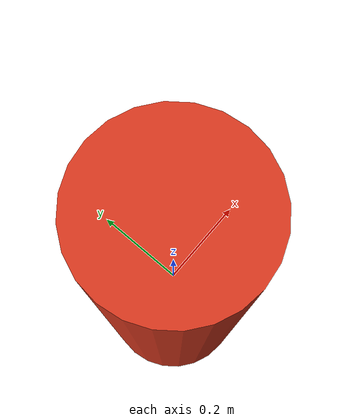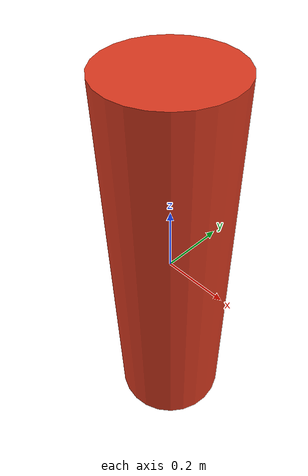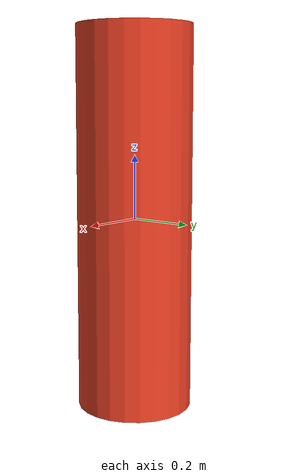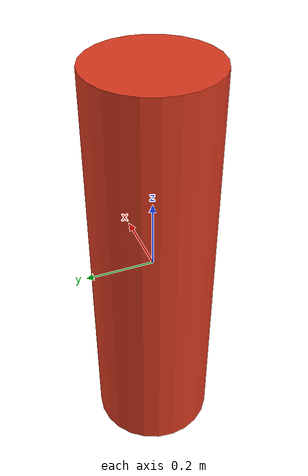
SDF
<?xml version="1.0"?>
<sdf version="1.10">
  <!-- Spawned dynamically into the frozen Phase 9 world by the BRNE demo. -->
  <model name="brne_pedestrian">
    <static>false</static>
    <self_collide>false</self_collide>
    <allow_auto_disable>false</allow_auto_disable>
    <link name="body">
      <inertial>
        <mass>40.0</mass>
        <inertia>
          <ixx>5.1240</ixx>
          <iyy>5.1240</iyy>
          <izz>0.6480</izz>
        </inertia>
      </inertial>
      <collision name="body_collision">
        <geometry>
          <cylinder><radius>0.18</radius><length>1.20</length></cylinder>
        </geometry>
        <surface>
          <friction><ode><mu>0.8</mu><mu2>0.8</mu2></ode></friction>
        </surface>
      </collision>
      <visual name="body_visual">
        <geometry>
          <cylinder><radius>0.18</radius><length>1.20</length></cylinder>
        </geometry>
        <material>
          <ambient>0.85 0.22 0.12 1</ambient>
          <diffuse>0.85 0.22 0.12 1</diffuse>
        </material>
      </visual>
    </link>

    <joint name="crossing_joint" type="prismatic">
      <parent>world</parent>
      <child>body</child>
      <axis>
        <xyz expressed_in="__model__">1 0 0</xyz>
        <limit>
          <lower>0.0</lower>
          <upper>3.0</upper>
          <effort>1000.0</effort>
          <velocity>0.25</velocity>
        </limit>
      </axis>
    </joint>

    <plugin
      filename="gz-sim-joint-controller-system"
      name="gz::sim::systems::JointController">
      <joint_name>crossing_joint</joint_name>
      <topic>/model/brne_pedestrian/joint/crossing_joint/cmd_vel</topic>
    </plugin>
    <plugin
      filename="gz-sim-odometry-publisher-system"
      name="gz::sim::systems::OdometryPublisher">
      <!-- The canonical body remains the published child frame. The existing
           adapter validates this child/body Twist contract at the ROS edge. -->
      <odom_frame>gazebo_world</odom_frame>
      <robot_base_frame>brne_pedestrian</robot_base_frame>
      <!-- Publish full pose so the standalone verifier can observe the locked
           Z/roll/pitch state; the planar BRNE adapter still consumes x/y/yaw. -->
      <dimensions>3</dimensions>
      <odom_publish_frequency>20</odom_publish_frequency>
      <odom_topic>/model/brne_pedestrian/odometry</odom_topic>
    </plugin>
  </model>
</sdf>
